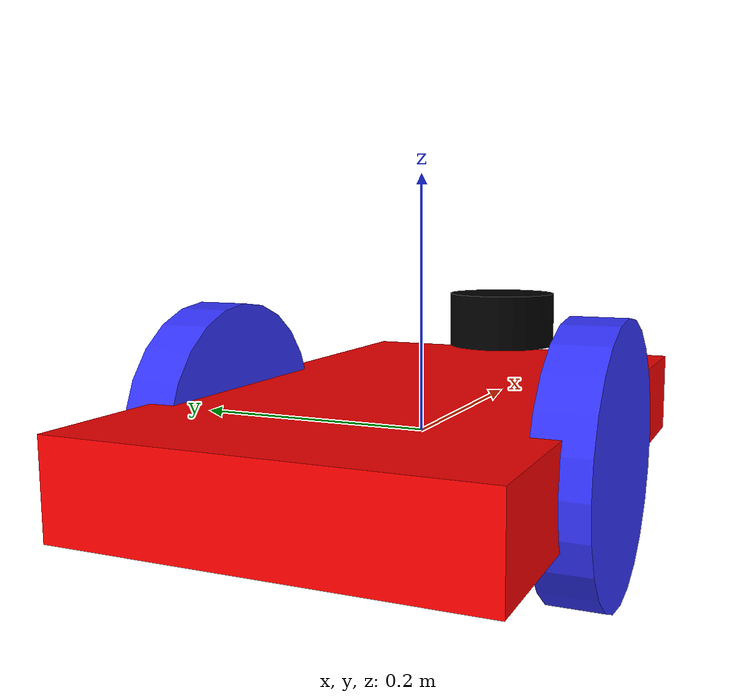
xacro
<?xml version="1.0"?>
<robot name="Group1Bot" xmlns:xacro="http://ros.org/wiki/xacro">
  <!-- Define arguments for sensor visualization -->
  <xacro:arg name="laser_visual" default="true"/>

  <!-- Include Gazebo-specific definitions -->
  <!-- We’ll manually include the laser sensor to avoid conflicts -->

  <!-- Create a robot chassis as Base Link -->
  <link name="base_link_chassis">
    <visual>
      <origin rpy="0 0 0" xyz="0 0 0"/>
      <geometry>
        <box size="0.5 0.3 0.07"/>
      </geometry>
      <material name="black">
        <color rgba="1.0 0.0 0.0 1.0"/>
      </material>
    </visual>
    <pose>0 0 0.1 0 0 0</pose>
    <inertial>
      <mass value="5"/>
      <origin rpy="0 0 0" xyz="0 0 0.1"/>
      <inertia ixx="0.0395416666667" ixy="0" ixz="0" iyy="0.106208333333" iyz="0" izz="0.106208333333"/>
    </inertial>
    <collision>
      <geometry>
        <box size="0.5 0.3 0.07"/>
      </geometry>
    </collision>
    <!-- Caster front -->
    <visual name="caster_visual">
      <origin rpy="0 0 0" xyz="0.2 0 -0.05"/>
      <geometry>
        <sphere radius="0.05"/>
      </geometry>
      <material name="white">
        <color rgba="1.0 1.0 1.0 1.0"/>
      </material>
    </visual>
    <collision name="caster_collision">
      <origin rpy="0 0 0" xyz="0.35 0 -0.05"/>
      <geometry>
        <sphere radius="0.05"/>
      </geometry>
    </collision>
    <inertial>
      <mass value="0.5"/>
      <inertia ixx="0.0005" ixy="0.0" ixz="0.0" iyy="0.0005" iyz="0.0" izz="0.0005"/>
    </inertial>
  </link>

  <!-- Laser sensor link -->
  <link name="base_scan">
    <visual>
      <origin rpy="0 0 0" xyz="0 0 0"/>
      <geometry>
        <cylinder radius="0.05" length="0.05"/>
      </geometry>
      <material name="black">
        <color rgba="0.0 0.0 0.0 1.0"/>
      </material>
    </visual>
    <collision>
      <origin rpy="0 0 0" xyz="0 0 0"/>
      <geometry>
        <cylinder radius="0.05" length="0.05"/>
      </geometry>
    </collision>
    <inertial>
      <mass value="0.1"/>
      <origin rpy="0 0 0" xyz="0 0 0"/>
      <inertia ixx="0.0001" ixy="0" ixz="0" iyy="0.0001" iyz="0" izz="0.0001"/>
    </inertial>
  </link>

  <!-- Joint to attach laser to chassis -->
  <joint name="laser_joint" type="fixed">
    <parent link="base_link_chassis"/>
    <child link="base_scan"/>
    <origin xyz="0.2 0 0.07" rpy="0 0 0"/>
  </joint>

  <!-- Create wheel right -->
  <link name="right_wheel">
    <visual name="right_wheel_visual">
      <origin rpy="0 1.5707 1.5707" xyz="0 0 0"/>
      <geometry>
        <cylinder length="0.04" radius="0.1"/>
      </geometry>
      <material name="blue">
        <color rgba="0.2 0.2 1.0 1.0"/>
      </material>
    </visual>
    <inertial>
      <mass value="0.2"/>
      <origin rpy="0 1.5707 1.5707" xyz="0 0 0"/>
      <inertia ixx="0.00052666666" ixy="0" ixz="0" iyy="0.00052666666" iyz="0" izz="0.001"/>
    </inertial>
    <collision name="right_wheel_collision">
      <origin rpy="0 1.5707 1.5707" xyz="0 0 0"/>
      <geometry>
        <cylinder length="0.04" radius="0.1"/>
      </geometry>
    </collision>
  </link>

  <!-- Joint for right wheel -->
  <joint name="right_wheel_hinge" type="continuous">
    <origin rpy="0 0 0" xyz="-0.05 0.15 0"/>
    <child link="right_wheel"/>
    <parent link="base_link_chassis"/>
    <axis rpy="0 0 0" xyz="0 1 0"/>
    <limit effort="10000" velocity="10000"/>
    <joint_properties damping="1.0" friction="1.0"/>
  </joint>

  <!-- Left Wheel link -->
  <link name="left_wheel">
    <visual name="left_wheel_visual">
      <origin rpy="0 1.5707 1.5707" xyz="0 0 0"/>
      <geometry>
        <cylinder length="0.04" radius="0.1"/>
      </geometry>
      <material name="blue">
        <color rgba="0.2 0.2 1.0 1.0"/>
      </material>
    </visual>
    <inertial>
      <mass value="0.2"/>
      <origin rpy="0 1.5707 1.5707" xyz="0 0 0"/>
      <inertia ixx="0.00052666666" ixy="0" ixz="0" iyy="0.00052666666" iyz="0" izz="0.001"/>
    </inertial>
    <collision name="left_wheel_collision">
      <origin rpy="0 1.5707 1.5707" xyz="0 0 0"/>
      <geometry>
        <cylinder length="0.04" radius="0.1"/>
      </geometry>
    </collision>
  </link>

  <!-- Joint for left wheel -->
  <joint name="left_wheel_hinge" type="continuous">
    <origin rpy="0 0 0" xyz="-0.05 -0.15 0"/>
    <child link="left_wheel"/>
    <parent link="base_link_chassis"/>
    <axis rpy="0 0 0" xyz="0 1 0"/>
    <limit effort="10000" velocity="10000"/>
    <joint_properties damping="1.0" friction="1.0"/>
  </joint>

  <!-- Gazebo tags -->
  <gazebo reference="base_link_chassis">
    <material>Gazebo/Orange</material>
  </gazebo>
  <gazebo reference="left_wheel">
    <material>Gazebo/Blue</material>
  </gazebo>
  <gazebo reference="right_wheel">
    <material>Gazebo/Blue</material>
  </gazebo>
  <gazebo reference="base_scan">
    <material>Gazebo/FlatBlack</material>
    <sensor type="ray" name="lds_lfcd_sensor">
      <pose>0 0 0 0 0 0</pose>
      <visualize>$(arg laser_visual)</visualize>
      <update_rate>5</update_rate>
      <ray>
        <scan>
          <horizontal>
            <samples>360</samples>\n            <resolution>1</resolution>
            <min_angle>0.0</min_angle>
            <max_angle>6.28319</max_angle>
          </horizontal>
        </scan>
        <range>
          <min>0.120</min>
          <max>3.5</max>
          <resolution>0.015</resolution>
        </range>
        <noise>
          <type>gaussian</type>
          <mean>0.0</mean>
          <stddev>0.01</stddev>
        </noise>
      </ray>
      <plugin name="gazebo_ros_lds_lfcd_controller" filename="libgazebo_ros_laser.so">
        <topicName>/Group1Bot/laser/scan</topicName>
        <frameName>base_scan</frameName>
      </plugin>
    </sensor>
  </gazebo>

  <!-- Differential drive plugin -->
  <gazebo>
    <plugin filename="libgazebo_ros_diff_drive.so" name="differential_drive_controller">
      <alwaysOn>true</alwaysOn>
      <updateRate>20</updateRate>
      <leftJoint>left_wheel_hinge</leftJoint>
      <rightJoint>right_wheel_hinge</rightJoint>
      <wheelSeparation>0.4</wheelSeparation>
      <wheelDiameter>0.2</wheelDiameter>
      <torque>5.0</torque>
      <commandTopic>Group1Bot/cmd_vel</commandTopic>
      <odometryTopic>odom</odometryTopic>
      <odometryFrame>odom</odometryFrame>
      <robotBaseFrame>base_link_chassis</robotBaseFrame>
      <legacyMode>true</legacyMode>
    </plugin>
  </gazebo>
</robot>
